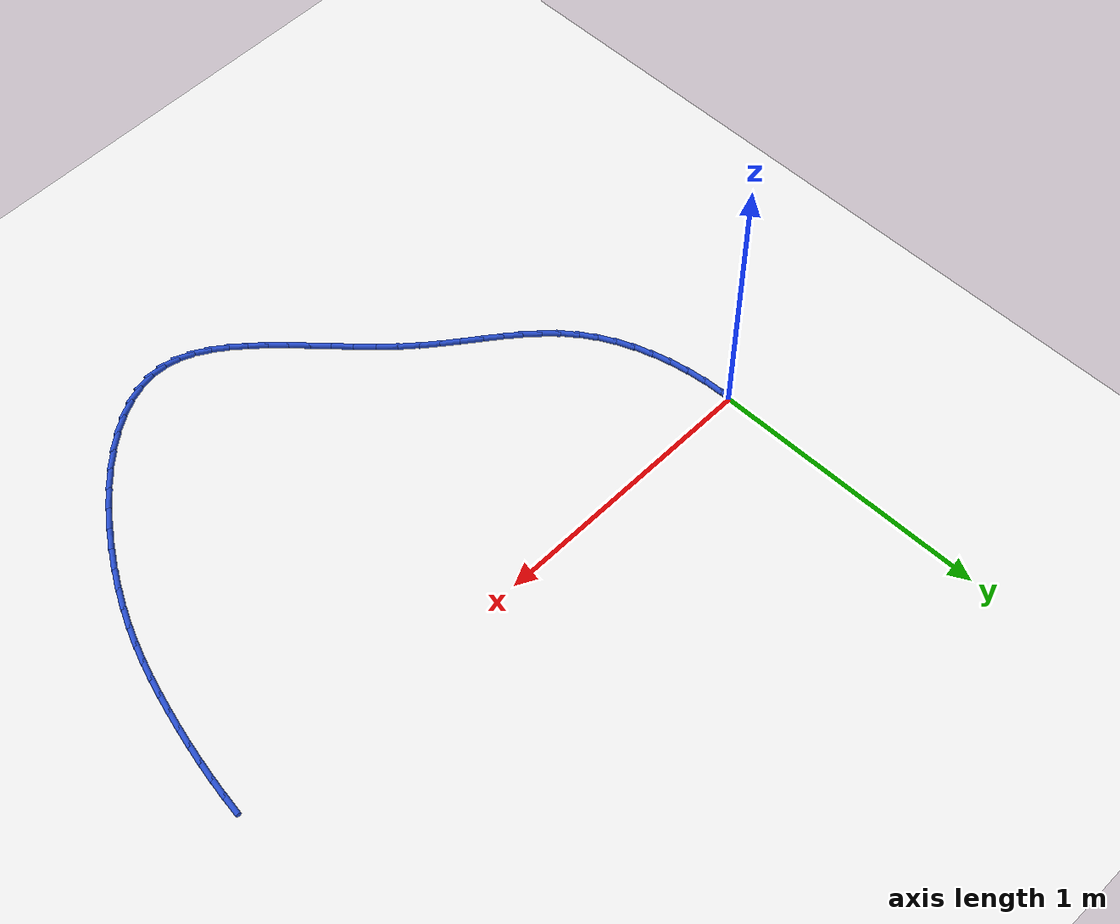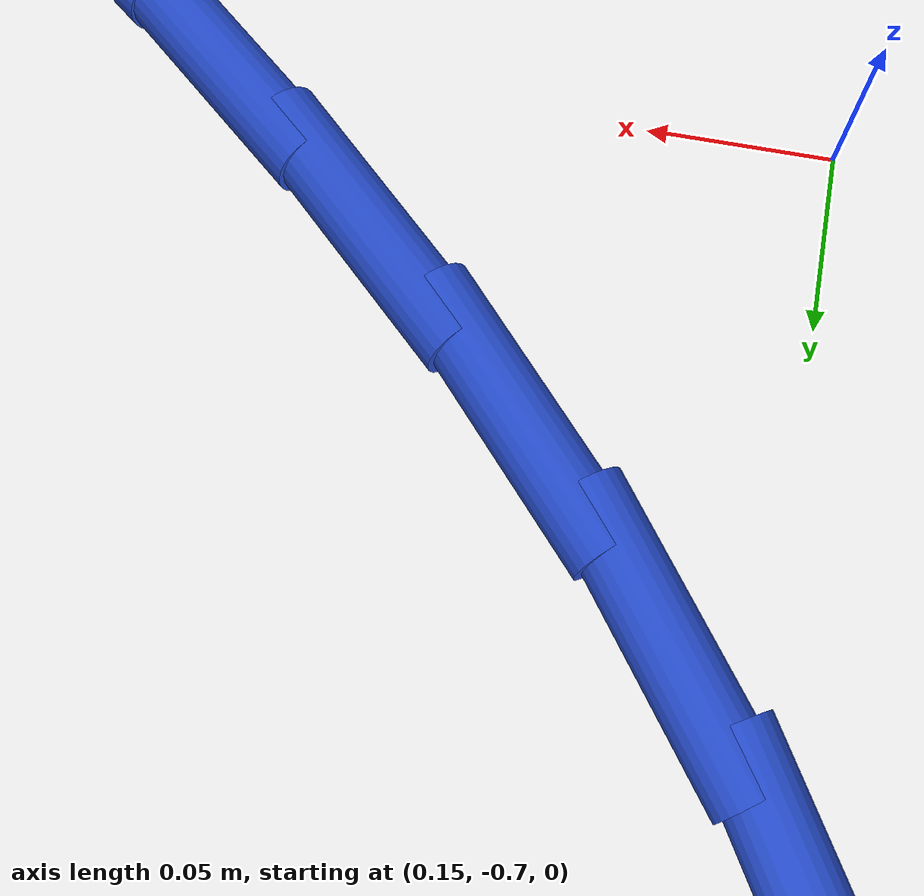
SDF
<sdf version="1.6">
 <world name="default">
  <model name="ground_plane">
   <static>1</static>
   <link name="link">
    <collision name="collision">
     <geometry><plane><normal>0 0 1</normal><size>100 100</size></plane></geometry>
     <surface><friction><ode><mu>100</mu><mu2>50</mu2></ode></friction></surface>
    </collision>
    <visual name="visual">
     <cast_shadows>0</cast_shadows>
     <geometry><plane><normal>0 0 1</normal><size>100 100</size></plane></geometry>
     <material>
      <script><uri>file://media/materials/scripts/gazebo.material</uri><name>Gazebo/WhiteGlow</name></script>
     </material>
    </visual>
   </link>
  </model>
  <model name="line">
   <link name="link_0">
    <pose>-6.938893903907228e-17 -6.938893903907228e-17 0.01 0 1.57 1.5371808095346098</pose>
    <collision name="collision">
     <geometry><cylinder><radius>0.01</radius><length>0.08</length></cylinder></geometry>
    </collision>
    <visual name="visual">
     <material>
      <script><name>Gazebo/Blue</name><uri>file://media/materials/scripts/gazebo.material</uri></script>
     </material>
     <geometry><cylinder><radius>0.01</radius><length>0.08</length></cylinder></geometry>
    </visual>
   </link>
   <link name="link_55">
    <pose>2.1017843236237814 -0.062449621800151886 0.01 0 1.57 1.4267905575104918</pose>
    <collision name="collision">
     <geometry><cylinder><radius>0.01</radius><length>0.08</length></cylinder></geometry>
    </collision>
    <visual name="visual">
     <material>
      <script><name>Gazebo/Blue</name><uri>file://media/materials/scripts/gazebo.material</uri></script>
     </material>
     <geometry><cylinder><radius>0.01</radius><length>0.08</length></cylinder></geometry>
    </visual>
   </link>
   <link name="link_56">
    <pose>2.092067423544435 -0.12945831518121062 0.01 0 1.57 1.4014568419439244</pose>
    <collision name="collision">
     <geometry><cylinder><radius>0.01</radius><length>0.08</length></cylinder></geometry>
    </collision>
    <visual name="visual">
     <material>
      <script><name>Gazebo/Blue</name><uri>file://media/materials/scripts/gazebo.material</uri></script>
     </material>
     <geometry><cylinder><radius>0.01</radius><length>0.08</length></cylinder></geometry>
    </visual>
   </link>
   <link name="link_57">
    <pose>2.080693395172051 -0.1959820792696507 0.01 0 1.57 1.3778071553229065</pose>
    <collision name="collision">
     <geometry><cylinder><radius>0.01</radius><length>0.08</length></cylinder></geometry>
    </collision>
    <visual name="visual">
     <material>
      <script><name>Gazebo/Blue</name><uri>file://media/materials/scripts/gazebo.material</uri></script>
     </material>
     <geometry><cylinder><radius>0.01</radius><length>0.08</length></cylinder></geometry>
    </visual>
   </link>
   <link name="link_58">
    <pose>2.067814651159367 -0.261884516513296 0.01 0 1.57 1.3557222422647328</pose>
    <collision name="collision">
     <geometry><cylinder><radius>0.01</radius><length>0.08</length></cylinder></geometry>
    </collision>
    <visual name="visual">
     <material>
      <script><name>Gazebo/Blue</name><uri>file://media/materials/scripts/gazebo.material</uri></script>
     </material>
     <geometry><cylinder><radius>0.01</radius><length>0.08</length></cylinder></geometry>
    </visual>
   </link>
   <link name="link_59">
    <pose>2.0535836041591216 -0.32702922935997386 0.01 0 1.57 1.3350924810027995</pose>
    <collision name="collision">
     <geometry><cylinder><radius>0.01</radius><length>0.08</length></cylinder></geometry>
    </collision>
    <visual name="visual">
     <material>
      <script><name>Gazebo/Blue</name><uri>file://media/materials/scripts/gazebo.material</uri></script>
     </material>
     <geometry><cylinder><radius>0.01</radius><length>0.08</length></cylinder></geometry>
    </visual>
   </link>
   <link name="link_60">
    <pose>2.0381526668240526 -0.3912798202575082 0.01 0 1.57 1.3158161635353445</pose>
    <collision name="collision">
     <geometry><cylinder><radius>0.01</radius><length>0.08</length></cylinder></geometry>
    </collision>
    <visual name="visual">
     <material>
      <script><name>Gazebo/Blue</name><uri>file://media/materials/scripts/gazebo.material</uri></script>
     </material>
     <geometry><cylinder><radius>0.01</radius><length>0.08</length></cylinder></geometry>
    </visual>
   </link>
   <link name="link_61">
    <pose>2.0216740950280467 -0.45450001983520333 0.01 0 1.57 1.2958660509707898</pose>
    <collision name="collision">
     <geometry><cylinder><radius>0.01</radius><length>0.08</length></cylinder></geometry>
    </collision>
    <visual name="visual">
     <material>
      <script><name>Gazebo/Blue</name><uri>file://media/materials/scripts/gazebo.material</uri></script>
     </material>
     <geometry><cylinder><radius>0.01</radius><length>0.08</length></cylinder></geometry>
    </visual>
   </link>
   <link name="link_62">
    <pose>2.0041315686759806 -0.5166913854544084 0.01 0 1.57 1.26978737882586</pose>
    <collision name="collision">
     <geometry><cylinder><radius>0.01</radius><length>0.08</length></cylinder></geometry>
    </collision>
    <visual name="visual">
     <material>
      <script><name>Gazebo/Blue</name><uri>file://media/materials/scripts/gazebo.material</uri></script>
     </material>
     <geometry><cylinder><radius>0.01</radius><length>0.08</length></cylinder></geometry>
    </visual>
   </link>
   <link name="link_63">
    <pose>1.9850194696655523 -0.5782555216820345 0.01 0 1.57 1.237290030673407</pose>
    <collision name="collision">
     <geometry><cylinder><radius>0.01</radius><length>0.08</length></cylinder></geometry>
    </collision>
    <visual name="visual">
     <material>
      <script><name>Gazebo/Blue</name><uri>file://media/materials/scripts/gazebo.material</uri></script>
     </material>
     <geometry><cylinder><radius>0.01</radius><length>0.08</length></cylinder></geometry>
    </visual>
   </link>
   <link name="link_64">
    <pose>1.963743906763607 -0.639666204683497 0.01 0 1.57 1.1995333894486369</pose>
    <collision name="collision">
     <geometry><cylinder><radius>0.01</radius><length>0.08</length></cylinder></geometry>
    </collision>
    <visual name="visual">
     <material>
      <script><name>Gazebo/Blue</name><uri>file://media/materials/scripts/gazebo.material</uri></script>
     </material>
     <geometry><cylinder><radius>0.01</radius><length>0.08</length></cylinder></geometry>
    </visual>
   </link>
   <link name="link_65">
    <pose>1.939710988736988 -0.7013972106242135 0.01 0 1.57 1.1579908693173622</pose>
    <collision name="collision">
     <geometry><cylinder><radius>0.01</radius><length>0.08</length></cylinder></geometry>
    </collision>
    <visual name="visual">
     <material>
      <script><name>Gazebo/Blue</name><uri>file://media/materials/scripts/gazebo.material</uri></script>
     </material>
     <geometry><cylinder><radius>0.01</radius><length>0.08</length></cylinder></geometry>
    </visual>
   </link>
   <link name="link_66">
    <pose>1.9123268243525386 -0.7639223156696008 0.01 0 1.57 1.114353145158049</pose>
    <collision name="collision">
     <geometry><cylinder><radius>0.01</radius><length>0.08</length></cylinder></geometry>
    </collision>
    <visual name="visual">
     <material>
      <script><name>Gazebo/Blue</name><uri>file://media/materials/scripts/gazebo.material</uri></script>
     </material>
     <geometry><cylinder><radius>0.01</radius><length>0.08</length></cylinder></geometry>
    </visual>
   </link>
   <link name="link_67">
    <pose>1.8810144371307052 -0.8276915392112001 0.01 0 1.57 1.071390738571499</pose>
    <collision name="collision">
     <geometry><cylinder><radius>0.01</radius><length>0.08</length></cylinder></geometry>
    </collision>
    <visual name="visual">
     <material>
      <script><name>Gazebo/Blue</name><uri>file://media/materials/scripts/gazebo.material</uri></script>
     </material>
     <geometry><cylinder><radius>0.01</radius><length>0.08</length></cylinder></geometry>
    </visual>
   </link>
   <link name="link_68">
    <pose>1.8456472244915523 -0.8925223504335347 0.01 0 1.57 1.0298561353672204</pose>
    <collision name="collision">
     <geometry><cylinder><radius>0.01</radius><length>0.08</length></cylinder></geometry>
    </collision>
    <visual name="visual">
     <material>
      <script><name>Gazebo/Blue</name><uri>file://media/materials/scripts/gazebo.material</uri></script>
     </material>
     <geometry><cylinder><radius>0.01</radius><length>0.08</length></cylinder></geometry>
    </visual>
   </link>
   <link name="link_69">
    <pose>1.8065859223535095 -0.9575477515298317 0.01 0 1.57 0.9882912561502859</pose>
    <collision name="collision">
     <geometry><cylinder><radius>0.01</radius><length>0.08</length></cylinder></geometry>
    </collision>
    <visual name="visual">
     <material>
      <script><name>Gazebo/Blue</name><uri>file://media/materials/scripts/gazebo.material</uri></script>
     </material>
     <geometry><cylinder><radius>0.01</radius><length>0.08</length></cylinder></geometry>
    </visual>
   </link>
   <link name="link_70">
    <pose>1.764215588731475 -1.0218665843053207 0.01 0 1.57 0.9452803448579841</pose>
    <collision name="collision">
     <geometry><cylinder><radius>0.01</radius><length>0.08</length></cylinder></geometry>
    </collision>
    <visual name="visual">
     <material>
      <script><name>Gazebo/Blue</name><uri>file://media/materials/scripts/gazebo.material</uri></script>
     </material>
     <geometry><cylinder><radius>0.01</radius><length>0.08</length></cylinder></geometry>
    </visual>
   </link>
   <link name="link_71">
    <pose>1.718921281640348 -1.0845776905652273 0.01 0 1.57 0.8993920097402194</pose>
    <collision name="collision">
     <geometry><cylinder><radius>0.01</radius><length>0.08</length></cylinder></geometry>
    </collision>
    <visual name="visual">
     <material>
      <script><name>Gazebo/Blue</name><uri>file://media/materials/scripts/gazebo.material</uri></script>
     </material>
     <geometry><cylinder><radius>0.01</radius><length>0.08</length></cylinder></geometry>
    </visual>
   </link>
   <link name="link_72">
    <pose>1.6710880590950263 -1.1447799121147817 0.01 0 1.57 0.849042620031035</pose>
    <collision name="collision">
     <geometry><cylinder><radius>0.01</radius><length>0.08</length></cylinder></geometry>
    </collision>
    <visual name="visual">
     <material>
      <script><name>Gazebo/Blue</name><uri>file://media/materials/scripts/gazebo.material</uri></script>
     </material>
     <geometry><cylinder><radius>0.01</radius><length>0.08</length></cylinder></geometry>
    </visual>
   </link>
   <link name="link_73">
    <pose>1.6211009791104087 -1.2015720907592093 0.01 0 1.57 0.7923543059878755</pose>
    <collision name="collision">
     <geometry><cylinder><radius>0.01</radius><length>0.08</length></cylinder></geometry>
    </collision>
    <visual name="visual">
     <material>
      <script><name>Gazebo/Blue</name><uri>file://media/materials/scripts/gazebo.material</uri></script>
     </material>
     <geometry><cylinder><radius>0.01</radius><length>0.08</length></cylinder></geometry>
    </visual>
   </link>
   <link name="link_74">
    <pose>1.569345099701393 -1.2540530683037399 0.01 0 1.57 0.7269933399181541</pose>
    <collision name="collision">
     <geometry><cylinder><radius>0.01</radius><length>0.08</length></cylinder></geometry>
    </collision>
    <visual name="visual">
     <material>
      <script><name>Gazebo/Blue</name><uri>file://media/materials/scripts/gazebo.material</uri></script>
     </material>
     <geometry><cylinder><radius>0.01</radius><length>0.08</length></cylinder></geometry>
    </visual>
   </link>
   <link name="link_75">
    <pose>1.5162054788828787 -1.3013216865536001 0.01 0 1.57 0.6499874010048682</pose>
    <collision name="collision">
     <geometry><cylinder><radius>0.01</radius><length>0.08</length></cylinder></geometry>
    </collision>
    <visual name="visual">
     <material>
      <script><name>Gazebo/Blue</name><uri>file://media/materials/scripts/gazebo.material</uri></script>
     </material>
     <geometry><cylinder><radius>0.01</radius><length>0.08</length></cylinder></geometry>
    </visual>
   </link>
   <link name="link_76">
    <pose>1.4620671746697629 -1.3424767873140184 0.01 0 1.57 0.557554089836119</pose>
    <collision name="collision">
     <geometry><cylinder><radius>0.01</radius><length>0.08</length></cylinder></geometry>
    </collision>
    <visual name="visual">
     <material>
      <script><name>Gazebo/Blue</name><uri>file://media/materials/scripts/gazebo.material</uri></script>
     </material>
     <geometry><cylinder><radius>0.01</radius><length>0.08</length></cylinder></geometry>
    </visual>
   </link>
   <link name="link_77">
    <pose>1.4073152450769455 -1.3766172123902218 0.01 0 1.57 0.4450625061017215</pose>
    <collision name="collision">
     <geometry><cylinder><radius>0.01</radius><length>0.08</length></cylinder></geometry>
    </collision>
    <visual name="visual">
     <material>
      <script><name>Gazebo/Blue</name><uri>file://media/materials/scripts/gazebo.material</uri></script>
     </material>
     <geometry><cylinder><radius>0.01</radius><length>0.08</length></cylinder></geometry>
    </visual>
   </link>
   <link name="link_78">
    <pose>1.3523347481193237 -1.4028418035874395 0.01 0 1.57 0.3074497128029758</pose>
    <collision name="collision">
     <geometry><cylinder><radius>0.01</radius><length>0.08</length></cylinder></geometry>
    </collision>
    <visual name="visual">
     <material>
      <script><name>Gazebo/Blue</name><uri>file://media/materials/scripts/gazebo.material</uri></script>
     </material>
     <geometry><cylinder><radius>0.01</radius><length>0.08</length></cylinder></geometry>
    </visual>
   </link>
   <link name="link_79">
    <pose>1.2975107418117968 -1.4202494027108974 0.01 0 1.57 0.14071997258143826</pose>
    <collision name="collision">
     <geometry><cylinder><radius>0.01</radius><length>0.08</length></cylinder></geometry>
    </collision>
    <visual name="visual">
     <material>
      <script><name>Gazebo/Blue</name><uri>file://media/materials/scripts/gazebo.material</uri></script>
     </material>
     <geometry><cylinder><radius>0.01</radius><length>0.08</length></cylinder></geometry>
    </visual>
   </link>
   <link name="link_80">
    <pose>1.243228284169263 -1.4279388515658251 0.01 0 1.57 -0.054591210065433306</pose>
    <collision name="collision">
     <geometry><cylinder><radius>0.01</radius><length>0.08</length></cylinder></geometry>
    </collision>
    <visual name="visual">
     <material>
      <script><name>Gazebo/Blue</name><uri>file://media/materials/scripts/gazebo.material</uri></script>
     </material>
     <geometry><cylinder><radius>0.01</radius><length>0.08</length></cylinder></geometry>
    </visual>
   </link>
   <link name="link_81">
    <pose>1.1898686658123192 -1.4250229882365846 0.01 0 1.57 -0.2546042245073115</pose>
    <collision name="collision">
     <geometry><cylinder><radius>0.01</radius><length>0.08</length></cylinder></geometry>
    </collision>
    <visual name="visual">
     <material>
      <script><name>Gazebo/Blue</name><uri>file://media/materials/scripts/gazebo.material</uri></script>
     </material>
     <geometry><cylinder><radius>0.01</radius><length>0.08</length></cylinder></geometry>
    </visual>
   </link>
   <link name="link_82">
    <pose>1.1375966473708468 -1.4114190832478595 0.01 0 1.57 -0.42350558858890763</pose>
    <collision name="collision">
     <geometry><cylinder><radius>0.01</radius><length>0.08</length></cylinder></geometry>
    </collision>
    <visual name="visual">
     <material>
      <script><name>Gazebo/Blue</name><uri>file://media/materials/scripts/gazebo.material</uri></script>
     </material>
     <geometry><cylinder><radius>0.01</radius><length>0.08</length></cylinder></geometry>
    </visual>
   </link>
   <link name="link_83">
    <pose>1.0862467269670326 -1.3882713682216306 0.01 0 1.57 -0.5558364598665047</pose>
    <collision name="collision">
     <geometry><cylinder><radius>0.01</radius><length>0.08</length></cylinder></geometry>
    </collision>
    <visual name="visual">
     <material>
      <script><name>Gazebo/Blue</name><uri>file://media/materials/scripts/gazebo.material</uri></script>
     </material>
     <geometry><cylinder><radius>0.01</radius><length>0.08</length></cylinder></geometry>
    </visual>
   </link>
   <link name="link_84">
    <pose>1.0356256102847647 -1.356827326707665 0.01 0 1.57 -0.655262656363772</pose>
    <collision name="collision">
     <geometry><cylinder><radius>0.01</radius><length>0.08</length></cylinder></geometry>
    </collision>
    <visual name="visual">
     <material>
      <script><name>Gazebo/Blue</name><uri>file://media/materials/scripts/gazebo.material</uri></script>
     </material>
     <geometry><cylinder><radius>0.01</radius><length>0.08</length></cylinder></geometry>
    </visual>
   </link>
   <link name="link_85">
    <pose>0.9855400030079309 -1.3183344422557293 0.01 0 1.57 -0.7275164279670748</pose>
    <collision name="collision">
     <geometry><cylinder><radius>0.01</radius><length>0.08</length></cylinder></geometry>
    </collision>
    <visual name="visual">
     <material>
      <script><name>Gazebo/Blue</name><uri>file://media/materials/scripts/gazebo.material</uri></script>
     </material>
     <geometry><cylinder><radius>0.01</radius><length>0.08</length></cylinder></geometry>
    </visual>
   </link>
   <link name="link_86">
    <pose>0.9357966108204188 -1.2740401984155905 0.01 0 1.57 -0.7778167148831906</pose>
    <collision name="collision">
     <geometry><cylinder><radius>0.01</radius><length>0.08</length></cylinder></geometry>
    </collision>
    <visual name="visual">
     <material>
      <script><name>Gazebo/Blue</name><uri>file://media/materials/scripts/gazebo.material</uri></script>
     </material>
     <geometry><cylinder><radius>0.01</radius><length>0.08</length></cylinder></geometry>
    </visual>
   </link>
   <link name="link_87">
    <pose>0.8862021394061151 -1.225192078737014 0.01 0 1.57 -0.8101066033299205</pose>
    <collision name="collision">
     <geometry><cylinder><radius>0.01</radius><length>0.08</length></cylinder></geometry>
    </collision>
    <visual name="visual">
     <material>
      <script><name>Gazebo/Blue</name><uri>file://media/materials/scripts/gazebo.material</uri></script>
     </material>
     <geometry><cylinder><radius>0.01</radius><length>0.08</length></cylinder></geometry>
    </visual>
   </link>
   <link name="link_88">
    <pose>0.8365632944489088 -1.173037566769768 0.01 0 1.57 -0.8270390864833019</pose>
    <collision name="collision">
     <geometry><cylinder><radius>0.01</radius><length>0.08</length></cylinder></geometry>
    </collision>
    <visual name="visual">
     <material>
      <script><name>Gazebo/Blue</name><uri>file://media/materials/scripts/gazebo.material</uri></script>
     </material>
     <geometry><cylinder><radius>0.01</radius><length>0.08</length></cylinder></geometry>
    </visual>
   </link>
   <link name="link_89">
    <pose>0.7866867816326859 -1.1188241460636172 0.01 0 1.57 -0.830153853762219</pose>
    <collision name="collision">
     <geometry><cylinder><radius>0.01</radius><length>0.08</length></cylinder></geometry>
    </collision>
    <visual name="visual">
     <material>
      <script><name>Gazebo/Blue</name><uri>file://media/materials/scripts/gazebo.material</uri></script>
     </material>
     <geometry><cylinder><radius>0.01</radius><length>0.08</length></cylinder></geometry>
    </visual>
   </link>
   <link name="link_90">
    <pose>0.7363793066413353 -1.0637993001683297 0.01 0 1.57 -0.8200415952398351</pose>
    <collision name="collision">
     <geometry><cylinder><radius>0.01</radius><length>0.08</length></cylinder></geometry>
    </collision>
    <visual name="visual">
     <material>
      <script><name>Gazebo/Blue</name><uri>file://media/materials/scripts/gazebo.material</uri></script>
     </material>
     <geometry><cylinder><radius>0.01</radius><length>0.08</length></cylinder></geometry>
    </visual>
   </link>
   <link name="link_91">
    <pose>0.6854475751587432 -1.0092105126336706 0.01 0 1.57 -0.7964432309190975</pose>
    <collision name="collision">
     <geometry><cylinder><radius>0.01</radius><length>0.08</length></cylinder></geometry>
    </collision>
    <visual name="visual">
     <material>
      <script><name>Gazebo/Blue</name><uri>file://media/materials/scripts/gazebo.material</uri></script>
     </material>
     <geometry><cylinder><radius>0.01</radius><length>0.08</length></cylinder></geometry>
    </visual>
   </link>
   <link name="link_92">
    <pose>0.6336982928687985 -0.9563052670094074 0.01 0 1.57 -0.7582888805373335</pose>
    <collision name="collision">
     <geometry><cylinder><radius>0.01</radius><length>0.08</length></cylinder></geometry>
    </collision>
    <visual name="visual">
     <material>
      <script><name>Gazebo/Blue</name><uri>file://media/materials/scripts/gazebo.material</uri></script>
     </material>
     <geometry><cylinder><radius>0.01</radius><length>0.08</length></cylinder></geometry>
    </visual>
   </link>
   <link name="link_93">
    <pose>0.5809382128858941 -0.9063309259645081 0.01 0 1.57 -0.7102872421445136</pose>
    <collision name="collision">
     <geometry><cylinder><radius>0.01</radius><length>0.08</length></cylinder></geometry>
    </collision>
    <visual name="visual">
     <material>
      <script><name>Gazebo/Blue</name><uri>file://media/materials/scripts/gazebo.material</uri></script>
     </material>
     <geometry><cylinder><radius>0.01</radius><length>0.08</length></cylinder></geometry>
    </visual>
   </link>
   <link name="link_94">
    <pose>0.527154395355163 -0.8600753239144752 0.01 0 1.57 -0.6731804602283973</pose>
    <collision name="collision">
     <geometry><cylinder><radius>0.01</radius><length>0.08</length></cylinder></geometry>
    </collision>
    <visual name="visual">
     <material>
      <script><name>Gazebo/Blue</name><uri>file://media/materials/scripts/gazebo.material</uri></script>
     </material>
     <geometry><cylinder><radius>0.01</radius><length>0.08</length></cylinder></geometry>
    </visual>
   </link>
   <link name="link_95">
    <pose>0.47292183451704134 -0.8168278937601079 0.01 0 1.57 -0.6525052925176694</pose>
    <collision name="collision">
     <geometry><cylinder><radius>0.01</radius><length>0.08</length></cylinder></geometry>
    </collision>
    <visual name="visual">
     <material>
      <script><name>Gazebo/Blue</name><uri>file://media/materials/scripts/gazebo.material</uri></script>
     </material>
     <geometry><cylinder><radius>0.01</radius><length>0.08</length></cylinder></geometry>
    </visual>
   </link>
   <link name="link_96">
    <pose>0.41893516143629767 -0.7755731634813653 0.01 0 1.57 -0.6494212964940723</pose>
    <collision name="collision">
     <geometry><cylinder><radius>0.01</radius><length>0.08</length></cylinder></geometry>
    </collision>
    <visual name="visual">
     <material>
      <script><name>Gazebo/Blue</name><uri>file://media/materials/scripts/gazebo.material</uri></script>
     </material>
     <geometry><cylinder><radius>0.01</radius><length>0.08</length></cylinder></geometry>
    </visual>
   </link>
   <link name="link_97">
    <pose>0.3658890071776984 -0.7352956610582049 0.01 0 1.57 -0.6650230804600068</pose>
    <collision name="collision">
     <geometry><cylinder><radius>0.01</radius><length>0.08</length></cylinder></geometry>
    </collision>
    <visual name="visual">
     <material>
      <script><name>Gazebo/Blue</name><uri>file://media/materials/scripts/gazebo.material</uri></script>
     </material>
     <geometry><cylinder><radius>0.01</radius><length>0.08</length></cylinder></geometry>
    </visual>
   </link>
   <link name="link_98">
    <pose>0.31447800280601007 -0.6949799144705849 0.01 0 1.57 -0.7003445714352363</pose>
    <collision name="collision">
     <geometry><cylinder><radius>0.01</radius><length>0.08</length></cylinder></geometry>
    </collision>
    <visual name="visual">
     <material>
      <script><name>Gazebo/Blue</name><uri>file://media/materials/scripts/gazebo.material</uri></script>
     </material>
     <geometry><cylinder><radius>0.01</radius><length>0.08</length></cylinder></geometry>
    </visual>
   </link>
   <link name="link_99">
    <pose>0.26539677938600104 -0.6536104516984637 0.01 0 1.57 -0.7561518325176393</pose>
    <collision name="collision">
     <geometry><cylinder><radius>0.01</radius><length>0.08</length></cylinder></geometry>
    </collision>
    <visual name="visual">
     <material>
      <script><name>Gazebo/Blue</name><uri>file://media/materials/scripts/gazebo.material</uri></script>
     </material>
     <geometry><cylinder><radius>0.01</radius><length>0.08</length></cylinder></geometry>
    </visual>
   </link>
   <link name="link_100">
    <pose>0.21933996798243716 -0.6101718007217983 0.01 0 1.57 -0.8324654695419587</pose>
    <collision name="collision">
     <geometry><cylinder><radius>0.01</radius><length>0.08</length></cylinder></geometry>
    </collision>
    <visual name="visual">
     <material>
      <script><name>Gazebo/Blue</name><uri>file://media/materials/scripts/gazebo.material</uri></script>
     </material>
     <geometry><cylinder><radius>0.01</radius><length>0.08</length></cylinder></geometry>
    </visual>
   </link>
   <link name="link_101">
    <pose>0.1770021996600867 -0.5636484895205481 0.01 0 1.57 -0.927227876832235</pose>
    <collision name="collision">
     <geometry><cylinder><radius>0.01</radius><length>0.08</length></cylinder></geometry>
    </collision>
    <visual name="visual">
     <material>
      <script><name>Gazebo/Blue</name><uri>file://media/materials/scripts/gazebo.material</uri></script>
     </material>
     <geometry><cylinder><radius>0.01</radius><length>0.08</length></cylinder></geometry>
    </visual>
   </link>
   <link name="link_102">
    <pose>0.13905898995060414 -0.5130646402154456 0.01 0 1.57 -1.0257641101890123</pose>
    <collision name="collision">
     <geometry><cylinder><radius>0.01</radius><length>0.08</length></cylinder></geometry>
    </collision>
    <visual name="visual">
     <material>
      <script><name>Gazebo/Blue</name><uri>file://media/materials/scripts/gazebo.material</uri></script>
     </material>
     <geometry><cylinder><radius>0.01</radius><length>0.08</length></cylinder></geometry>
    </visual>
   </link>
   <link name="link_103">
    <pose>0.10580953053472919 -0.4582238572175372 0.01 0 1.57 -1.1166146548381823</pose>
    <collision name="collision">
     <geometry><cylinder><radius>0.01</radius><length>0.08</length></cylinder></geometry>
    </collision>
    <visual name="visual">
     <material>
      <script><name>Gazebo/Blue</name><uri>file://media/materials/scripts/gazebo.material</uri></script>
     </material>
     <geometry><cylinder><radius>0.01</radius><length>0.08</length></cylinder></geometry>
    </visual>
   </link>
   <link name="link_104">
    <pose>0.0772088357670621 -0.39964264190094234 0.01 0 1.57 -1.200123594016922</pose>
    <collision name="collision">
     <geometry><cylinder><radius>0.01</radius><length>0.08</length></cylinder></geometry>
    </collision>
    <visual name="visual">
     <material>
      <script><name>Gazebo/Blue</name><uri>file://media/materials/scripts/gazebo.material</uri></script>
     </material>
     <geometry><cylinder><radius>0.01</radius><length>0.08</length></cylinder></geometry>
    </visual>
   </link>
   <link name="link_105">
    <pose>0.053199249848077945 -0.3378637394208593 0.01 0 1.57 -1.2772623239980974</pose>
    <collision name="collision">
     <geometry><cylinder><radius>0.01</radius><length>0.08</length></cylinder></geometry>
    </collision>
    <visual name="visual">
     <material>
      <script><name>Gazebo/Blue</name><uri>file://media/materials/scripts/gazebo.material</uri></script>
     </material>
     <geometry><cylinder><radius>0.01</radius><length>0.08</length></cylinder></geometry>
    </visual>
   </link>
   <link name="link_106">
    <pose>0.033723116978250554 -0.2734298949324835 0.01 0 1.57 -1.3490889228042402</pose>
    <collision name="collision">
     <geometry><cylinder><radius>0.01</radius><length>0.08</length></cylinder></geometry>
    </collision>
    <visual name="visual">
     <material>
      <script><name>Gazebo/Blue</name><uri>file://media/materials/scripts/gazebo.material</uri></script>
     </material>
     <geometry><cylinder><radius>0.01</radius><length>0.08</length></cylinder></geometry>
    </visual>
   </link>
   <link name="link_107">
    <pose>0.018722781358054805 -0.20688385359101347 0.01 0 1.57 -1.4166717721748088</pose>
    <collision name="collision">
     <geometry><cylinder><radius>0.01</radius><length>0.08</length></cylinder></geometry>
    </collision>
    <visual name="visual">
     <material>
      <script><name>Gazebo/Blue</name><uri>file://media/materials/scripts/gazebo.material</uri></script>
     </material>
     <geometry><cylinder><radius>0.01</radius><length>0.08</length></cylinder></geometry>
    </visual>
   </link>
   <link name="link_108">
    <pose>0.008140587187964751 -0.13876836055164438 0.01 0 1.57 -1.4810537825794032</pose>
    <collision name="collision">
     <geometry><cylinder><radius>0.01</radius><length>0.08</length></cylinder></geometry>
    </collision>
    <visual name="visual">
     <material>
      <script><name>Gazebo/Blue</name><uri>file://media/materials/scripts/gazebo.material</uri></script>
     </material>
     <geometry><cylinder><radius>0.01</radius><length>0.08</length></cylinder></geometry>
    </visual>
   </link>
   <link name="link_109">
    <pose>0.0019188786684550298 -0.06962616096957483 0.01 0 1.57 -1.5432435644150524</pose>
    <collision name="collision">
     <geometry><cylinder><radius>0.01</radius><length>0.08</length></cylinder></geometry>
    </collision>
    <visual name="visual">
     <material>
      <script><name>Gazebo/Blue</name><uri>file://media/materials/scripts/gazebo.material</uri></script>
     </material>
     <geometry><cylinder><radius>0.01</radius><length>0.08</length></cylinder></geometry>
    </visual>
   </link>
  </model>
 </world>
</sdf>
